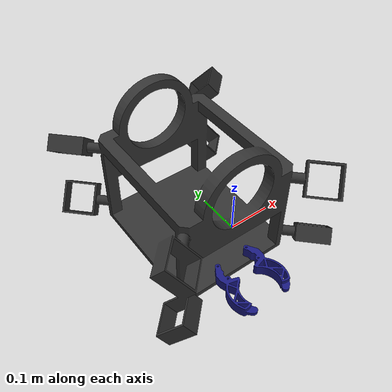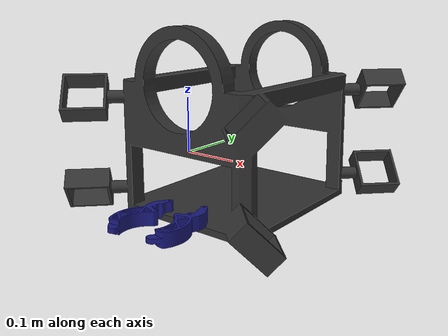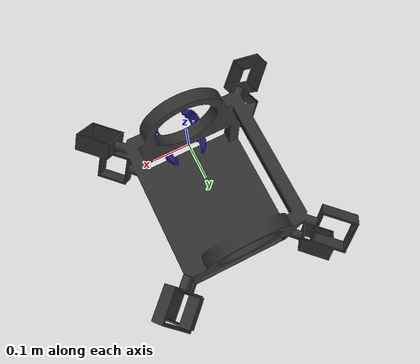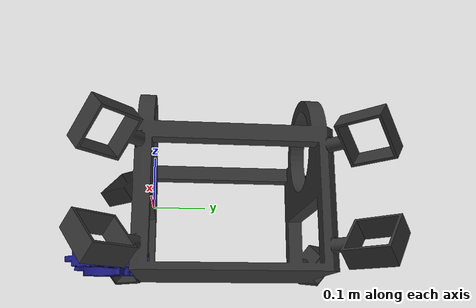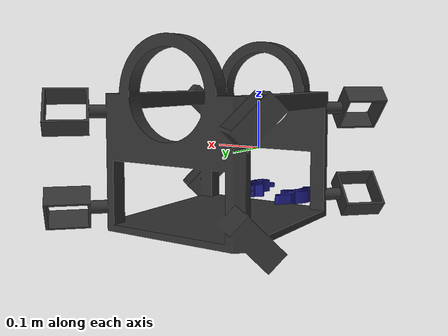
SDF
<?xml version='1.0'?>
<sdf version='1.7'>
  <model name='Beaumont'>
    <link name='chassis'>
      <pose>0 0 -0 0 -0 0</pose>
      <inertial>
        <mass>7.195</mass>
        <!-- The center of buoyancy being below the center of volume (electronics enclosure) enhances stability in water.-->
        <pose>0 0.13 0.05 0 -0 0</pose>
        <!-- Mass moments of inertia imported from the "Simplified ROV" model in Onshape. Material chosen was Aluminum-->
        <inertia>
          <ixx>0.34673407</ixx>
          <ixy>0</ixy>
          <ixz>0</ixz>
          <iyy>0.2546457474</iyy>
          <iyz>0.000011623</iyz>
          <izz>0.3330063202</izz>
        </inertia>
      </inertial>
      <self_collide>0</self_collide>
      <enable_wind>0</enable_wind>
      <kinematic>0</kinematic>
      <gravity>1</gravity>
      <frame name='chassis_frame'>
        <pose>0 0.5 0 0 -0 0</pose>
      </frame>
      <visual name='assembly_visual'>
        <pose>0 0 0 0 -0 0</pose>
        <geometry>
          <mesh>
            <uri>chassis_assembly.stl</uri>
            <scale>1 1 1</scale>
          </mesh>
        </geometry>
        <material>
        <shader type='pixel'/>
        <ambient>0.2 0.2 0.2 1</ambient>
        <diffuse>0.2 0.2 0.2 1</diffuse>
        <specular>0.2 0.2 0.2 1</specular>
        <emissive>0.2 0.2 0.2 1</emissive>
        </material>
        <transparency>0</transparency>
        <cast_shadows>1</cast_shadows>
      </visual>
      <collision name='assembly_collision'>
        <max_contacts>10</max_contacts>
        <pose>0 0 0 0 -0 0</pose>
        <geometry>
          <mesh>
            <uri>chassis_assembly.stl</uri>
            <scale>1 1 1</scale>
          </mesh>
        </geometry>
      </collision>
      <collision name='electronics_enclosure'>
        <laser_retro>0</laser_retro>
        <max_contacts>10</max_contacts>
        <!-- The enclosure is positioned such that the center of volume is approximately above the center of mass.
            This required a bit of trial and error.-->
        <pose>0 0.1225 0.12 1.5708 0 0</pose>
        <geometry>
          <!-- Ideally, this would have been a cylinder. However, the Buoyancy plugin only accepts boxes and spheres -->
          <box>
            <size>0.157 0.157 0.3</size>
          </box>
        </geometry>
      </collision>
    </link>
    <model name='left_claw'>
      <pose>0.02 -0.08 -0.02 0 -0 3.14159</pose>
      <link name='left_claw_link'>
        <inertial>
          <pose>-0.0325 0.025 0.01125 0 0 0</pose>
          <mass>0.1</mass>
        </inertial>
        <pose>0 0 -0.1 0 7e-06 0.005444</pose>
        <gravity>1</gravity>
        <self_collide>0</self_collide>
        <kinematic>0</kinematic>
        <enable_wind>0</enable_wind>
        <visual name='claw_hand_visual'>
          <pose>0 0 0 0 3e-06 3e-06</pose>
          <geometry>
            <mesh>
              <uri>claw.stl</uri>
              <scale>1 1 1</scale>
            </mesh>
            </geometry>
            <material>
              <shader type='pixel'/>
              <ambient>0.1 0.1 0.5 1</ambient>
              <diffuse>0.1 0.1 0.5 1</diffuse>
              <specular>0.1 0.1 0.5 1</specular>
              <emissive>0 0 0.5 1</emissive>
            </material>
          <transparency>0</transparency>
          <cast_shadows>1</cast_shadows>
        </visual>
        <collision name='collision_1'>
          <laser_retro>0</laser_retro>
          <max_contacts>10</max_contacts>
          <pose>0 0 0 0 -0 0</pose>
          <geometry>
            <mesh>
                <uri>claw.stl</uri>
              <scale>1 1 1</scale>
            </mesh>
          </geometry>
        </collision>
      </link>
      <static>0</static>
      <allow_auto_disable>1</allow_auto_disable>
    </model>
    <model name='right_claw'>
      <pose>-0.02 -0.08 -0.2 0 3.14159 3.14159</pose>
      <link name='right_claw_link'>
        <inertial>
          <pose>-0.0325 0.025 0.01125 0 0 0</pose>
          <mass>0.1</mass>
        </inertial>
        <pose>0 0 -0.1 0 7e-06 0.005444</pose>
        <gravity>1</gravity>
        <self_collide>0</self_collide>
        <kinematic>0</kinematic>
        <enable_wind>0</enable_wind>
        <visual name='claw_hand_visual'>
          <pose>0 0 0 0 3e-06 3e-06</pose>
          <geometry>
            <mesh>
              <uri>claw.stl</uri>
              <scale>1 1 1</scale>
            </mesh>
            </geometry>
            <material>
              <shader type='pixel'/>
              <ambient>0.1 0.1 0.5 1</ambient>
              <diffuse>0.1 0.1 0.5 1</diffuse>
              <specular>0.1 0.1 0.5 1</specular>
              <emissive>0 0 0.5 1</emissive>
            </material>
          <transparency>0</transparency>
          <cast_shadows>1</cast_shadows>
        </visual>
        <collision name='collision_1'>
          <laser_retro>0</laser_retro>
          <max_contacts>10</max_contacts>
          <pose>0 0 0 0 -0 0</pose>
          <geometry>
            <mesh>
                <uri>claw.stl</uri>
              <scale>1 1 1</scale>
            </mesh>
          </geometry>
        </collision>
      </link>
      <static>0</static>
      <allow_auto_disable>1</allow_auto_disable>
    </model>
    <joint name='chassis_JOINT_0_1' type='revolute'>
      <parent>chassis</parent>
      <child>right_claw::right_claw_link</child>
      <pose>0 -0.01 0 0 -0 0</pose>
      <axis>
        <xyz>0 0 1</xyz>
        <limit>
          <lower>-0.4363</lower>
          <upper>0.4363</upper>
          <effort>-1</effort>
          <velocity>-1</velocity>
        </limit>
        <dynamics>
          <spring_reference>0</spring_reference>
          <spring_stiffness>0</spring_stiffness>
          <damping>0</damping>
          <friction>0</friction>
        </dynamics>
      </axis>
      <physics>
        <ode>
          <limit>
            <cfm>0</cfm>
            <erp>0.2</erp>
          </limit>
          <suspension>
            <cfm>0</cfm>
            <erp>0.2</erp>
          </suspension>
        </ode>
      </physics>
    </joint>
    <joint name='chassis_JOINT_1_1' type='revolute'>
      <parent>chassis</parent>
      <child>left_claw::left_claw_link</child>
      <pose>-0.023 -0.07 0.02 0 -0 0</pose>
      <axis>
        <xyz>0 0 1</xyz>
        <limit>
          <lower>-0.4363</lower>
          <upper>0.4363</upper>
          <effort>-1</effort>
          <velocity>-1</velocity>
        </limit>
        <dynamics>
          <spring_reference>0</spring_reference>
          <spring_stiffness>0</spring_stiffness>
          <damping>0</damping>
          <friction>0</friction>
        </dynamics>
      </axis>
      <physics>
        <ode>
          <limit>
            <cfm>0</cfm>
            <erp>0.2</erp>
          </limit>
          <suspension>
            <cfm>0</cfm>
            <erp>0.2</erp>
          </suspension>
        </ode>
      </physics>
    </joint>
    <static>0</static>
    <self_collide>0</self_collide>
    <allow_auto_disable>1</allow_auto_disable>
  </model>
</sdf>
